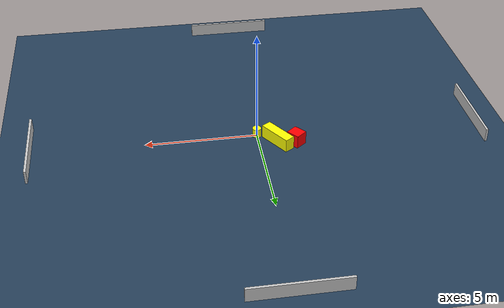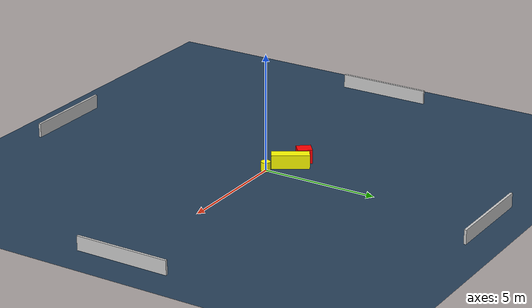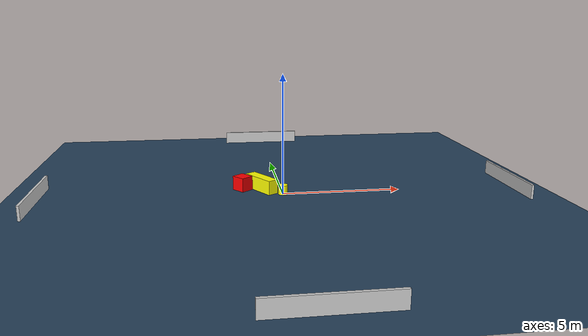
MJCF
<?xml version="1.0" ?>
<mujoco model="generated_environment">
  <option timestep="0.01" integrator="RK4" cone="elliptic"/>
  <default>
    <geom density="1"/>
  </default>
  <asset>
    <texture builtin="gradient" height="3072" name="skybox" rgb1="0.3 0.5 0.7" rgb2="0 0 0" type="skybox" width="512"/>
    <texture builtin="checker" height="300" name="groundplane" rgb1="0.2 0.3 0.4" rgb2="0.1 0.2 0.3" type="2d" width="300"/>
    <material name="groundplane" reflectance="0.2" texrepeat="5 5" texture="groundplane"/>
  </asset>
  <worldbody>
    <light dir="0 0 -1" directional="true" pos="0 0 1.5"/>
    <geom condim="3" friction="0.5 0.005 0.001" material="groundplane" name="floor" pos="0 0 0" size="0 0 0.05" type="plane"/>
    <body name="walls">
      <geom name="wall_1" condim="4" pos="-10.0 0.0 0.3" rgba="0.800000011920929 0.800000011920929 0.800000011920929 1.0" size="0.05 2.0 0.3" type="box"/>
      <geom name="wall_2" condim="4" pos="10.0 0.0 0.3" rgba="0.800000011920929 0.800000011920929 0.800000011920929 1.0" size="0.05 2.0 0.3" type="box"/>
      <geom name="wall_3" condim="4" pos="0.0 -10.0 0.3" rgba="0.800000011920929 0.800000011920929 0.800000011920929 1.0" size="2.0 0.05 0.3" type="box"/>
      <geom name="wall_4" condim="4" pos="0.0 10.0 0.3" rgba="0.800000011920929 0.800000011920929 0.800000011920929 1.0" size="2.0 0.05 0.3" type="box"/>
    </body>
    <body name="robot">
      <joint name="joint_x" type="slide" pos="0 0 0" axis="1 0 0"/>
      <joint name="joint_y" type="slide" pos="0 0 0" axis="0 1 0"/>
      <geom name="robot" type="cylinder" pos="0.0 0.0 0.2" size="0.2 0.2 0.0" mass="5.0" friction="1.0 0.005 0.0001" condim="4" rgba="1.0 1.0 0.0 1.0"/>
    </body>
    <body name="obstacle_1_movable">
      <geom name="obstacle_1_movable" condim="4" pos="-0.835092371238565 0.6732440513315218 0.3" euler="0 0 122.6484599208041" friction="0.0 0.005 0.001" rgba="1.0 1.0 0.0 1.0" size="0.7842829857072389 0.23129791032170036 0.3" type="box" mass="0.1"/>
      <joint type="free"/>
    </body>
    <body name="obstacle_2_static">
      <geom name="obstacle_2_static" condim="4" pos="-1.6383341531347053 0.8421314091171597 0.3" euler="0 0 219.30605653049145" friction="0.0 0.005 0.001" rgba="1.0 0.0 0.0 1.0" size="0.28221113917989527 0.30800985177378504 0.3" type="box"/>
    </body>
  </worldbody>
  <actuator>
    <motor name="actuator_x" joint="joint_x" gear="1" ctrlrange="-1 1"/>
    <motor name="actuator_y" joint="joint_y" gear="1" ctrlrange="-1 1"/>
  </actuator>
</mujoco>
